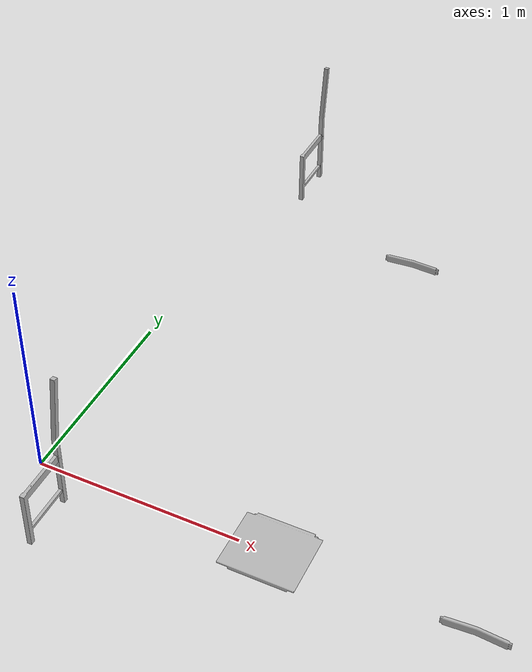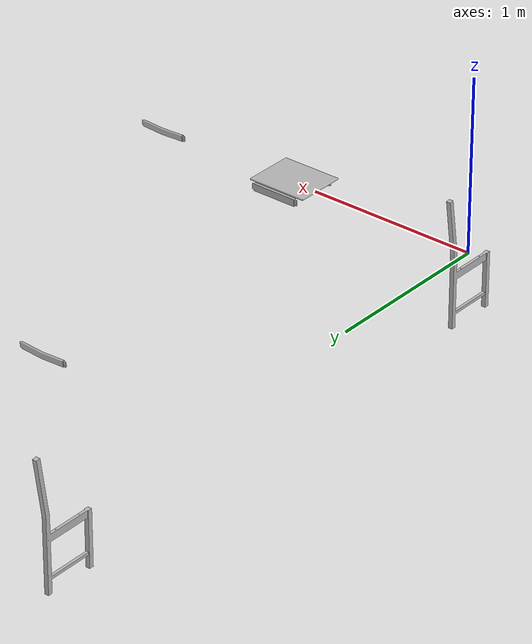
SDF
<?xml version='1.0'?>
<sdf version="1.4">
  <model name="chair_ivar">

    <link name="mesh_link0">
      <pose>0 0.01 0  0 0 0</pose>
      <visual name="visual0">
        <geometry>
          <mesh>
            <uri>model://ivar_chair/meshes/0.stl</uri>
            <scale>0.00065 0.00065 0.00065</scale>
          </mesh>
        </geometry>
      </visual>
      <collision name="collision0">
        <geometry>
          <mesh>
            <uri>model://ivar_chair/meshes/0.stl</uri>
            <scale>0.00065 0.00065 0.00065</scale>
          </mesh>
        </geometry>
      </collision>
    </link>

    <link name="mesh_link1">
      <pose>0 3.05 0 0 0 0</pose>
      <visual name="visual1">
        <geometry>
          <mesh>
            <uri>model://ivar_chair/meshes/1.stl</uri>
            <scale>0.00065 0.00065 0.00065</scale>
          </mesh>
        </geometry>
      </visual>
      <collision name="collision1">
        <geometry>
          <mesh>
            <uri>model://ivar_chair/meshes/1.stl</uri>
            <scale>0.00065 0.00065 0.00065</scale>
          </mesh>
        </geometry>
      </collision>
    </link>

    <link name="mesh_link2">
      <pose>1 2.1 0 0 0 0</pose>
      <visual name="visual2">
        <geometry>
          <mesh>
            <uri>model://ivar_chair/meshes/2.stl</uri>
            <scale>0.00065 0.00065 0.00065</scale>
          </mesh>
        </geometry>
      </visual>
      <collision name="collision2">
        <geometry>
          <mesh>
            <uri>model://ivar_chair/meshes/2.stl</uri>
            <scale>0.00065 0.00065 0.00065</scale>
          </mesh>
        </geometry>
      </collision>
    </link>

    <link name="mesh_link3">
      <pose>2.05 0 0 0 0 0</pose>
      <visual name="visual3">
        <geometry>
          <mesh>
            <uri>model://ivar_chair/meshes/3.stl</uri>
            <scale>0.00065 0.00065 0.00065</scale>
          </mesh>
        </geometry>
      </visual>
      <collision name="collision3">
        <geometry>
          <mesh>
            <uri>model://ivar_chair/meshes/3.stl</uri>
            <scale>0.00065 0.00065 0.00065</scale>
          </mesh>
        </geometry>
      </collision>
    </link>

    <link name="mesh_link4">
      <pose>1.15 0 0 0 0 0</pose>
      <visual name="visual4">
        <geometry>
          <mesh>
            <uri>model://ivar_chair/meshes/4.stl</uri>
            <scale>0.00065 0.00065 0.00065</scale>
          </mesh>
        </geometry>
      </visual>
      <collision name="collision4">
        <geometry>
          <mesh>
            <uri>model://ivar_chair/meshes/4.stl</uri>
            <scale>0.00065 0.00065 0.00065</scale>
          </mesh>
        </geometry>
      </collision>
    </link>
  </model>
</sdf>
